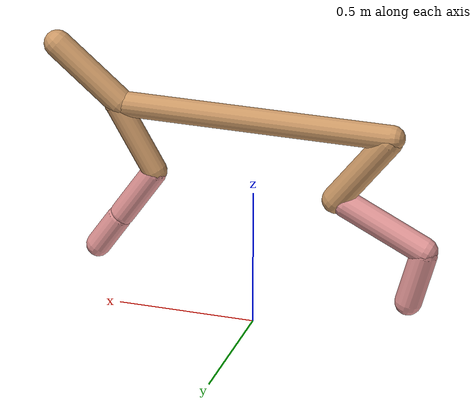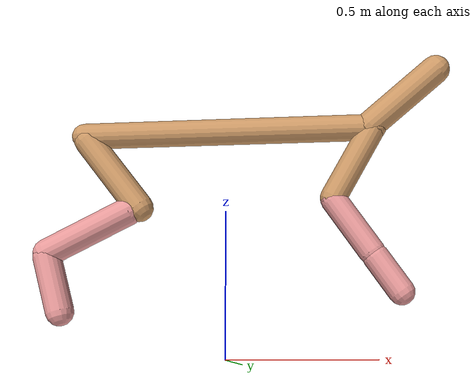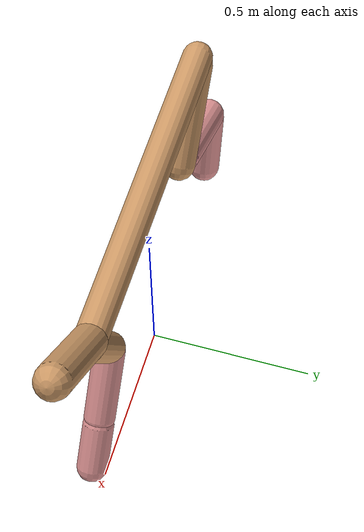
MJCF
<mujoco model="cheetah">
  <compiler angle="radian" coordinate="local" inertiafromgeom="true" settotalmass="14" />
  <default>
    <joint armature=".1" damping=".01" limited="true" solimplimit="0 .8 .03" solreflimit=".02 1" stiffness="8" />
    <geom conaffinity="0" condim="3" contype="1" friction="0.8 .1 .1" rgba="0.8 0.6 .4 1" solimp="0.0 0.8 0.01" solref="0.02 1" />
    <motor ctrllimited="true" ctrlrange="-1 1" />
  </default>
  <size nstack="300000" nuser_geom="1" />
  <option gravity="0 0 -9.81" timestep="0.01" />
  <worldbody>
    <body name="torso" pos="0.0 0.0 0.7793804946294358">
      <joint armature="0" axis="1 0 0" damping="0" limited="false" name="ignorex" pos="0 0 0" stiffness="0" type="slide" />
      <joint armature="0" axis="0 0 1" damping="0" limited="false" name="ignorez" pos="0 0 0" stiffness="0" type="slide" />
      <joint armature="0" axis="0 1 0" damping="0" limited="false" name="ignorey" pos="0 0 0" stiffness="0" type="hinge" />
      <geom fromto="-0.5 0.0 0.0 0.501754779193701 0.0 0.0" name="torso" size="0.04479747934194111" type="capsule" />
      <geom axisangle="0 1 0 .87" name="head" pos="0.6017547791937011 0.0 0.1" size="0.04910059898529578 0.15" type="capsule" />

      <body name="bthigh" pos="-.5 0 0">
        <joint axis="0 1 0" damping="6" name="bthigh" pos="0 0 0" range="-.52 1.05" stiffness="240" type="hinge" />
        <geom axisangle="0 1 0 -3.8" name="bthigh" pos="0.10594735216752971 0.0 -0.13773155781778862" size="0.04871213762727689 0.15475438281463405" type="capsule" />
        <body name="bshin" pos="0.1718947043350594 0.0 -0.26546311563557723">
          <joint axis="0 1 0" damping="4.5" name="bshin" pos="0 0 0" range="-.785 .785" stiffness="180" type="hinge" />
          <geom axisangle="0 1 0 -2.03" name="bshin" pos="-0.14902543298706655 0.0 -0.07451271649353328" rgba="0.9 0.6 0.6 1" size="0.04871213762727689 0.16009074084272487" type="capsule" />
          <body name="bfoot" pos="-0.2980508659741331 0.0 -0.14902543298706655">
            <joint axis="0 1 0" damping="3" name="bfoot" pos="0 0 0" range="-.4 .785" stiffness="120" type="hinge" />
            <geom axisangle="0 1 0 -.27" name="bfoot" pos="0.031868411931217075 0.0 -0.10304119857760188" rgba="0.9 0.6 0.6 1" size="0.04871213762727689 0.1003235309281076" type="capsule" />
            <inertial mass="10" />
          </body>
        </body>
      </body>
      <body name="fthigh" pos="0.5017547791937012 0.0 0.0">
        <joint axis="0 1 0" damping="4.5" name="fthigh" pos="0 0 0" range="-1.5 0.8" stiffness="180" type="hinge" />
        <geom axisangle="0 1 0 .52" name="fthigh" pos="-0.07153254614444429 0.0 -0.1226272219619045" size="0.04450338814462182 0.13604154449613423" type="capsule" />
        <body name="fshin" pos="-0.14306509228888858 0.0 -0.245254443923809">
          <joint axis="0 1 0" damping="3" name="fshin" pos="0 0 0" range="-1.2 1.1" stiffness="120" type="hinge" />
          <geom axisangle="0 1 0 -.6" name="fshin" pos="0.06641928068111197 0.0 -0.09196515786615503" rgba="0.9 0.6 0.6 1" size="0.04450338814462182 0.10842408809466336" type="capsule" />
          <body name="ffoot" pos="0.13283856136222394 0.0 -0.18393031573231006">
            <joint axis="0 1 0" damping="1.5" name="ffoot" pos="0 0 0" range="-3.1 -0.3" stiffness="60" type="hinge" />
            <geom axisangle="0 1 0 -.6" name="ffoot" pos="0.04586565172400124 0.0 -0.0713465693484464" rgba="0.9 0.6 0.6 1" size="0.04450338814462182 0.07160081289270223" type="capsule" />
            <inertial mass="10" />
          </body>
        </body>
      </body>
    </body>
  </worldbody>
  <actuator>
    <motor gear="120" joint="bthigh" name="bthigh" />
    <motor gear="90" joint="bshin" name="bshin" />
    <motor gear="60" joint="bfoot" name="bfoot" />
    <motor gear="120" joint="fthigh" name="fthigh" />
    <motor gear="60" joint="fshin" name="fshin" />
    <motor gear="30" joint="ffoot" name="ffoot" />
  </actuator>
</mujoco>
